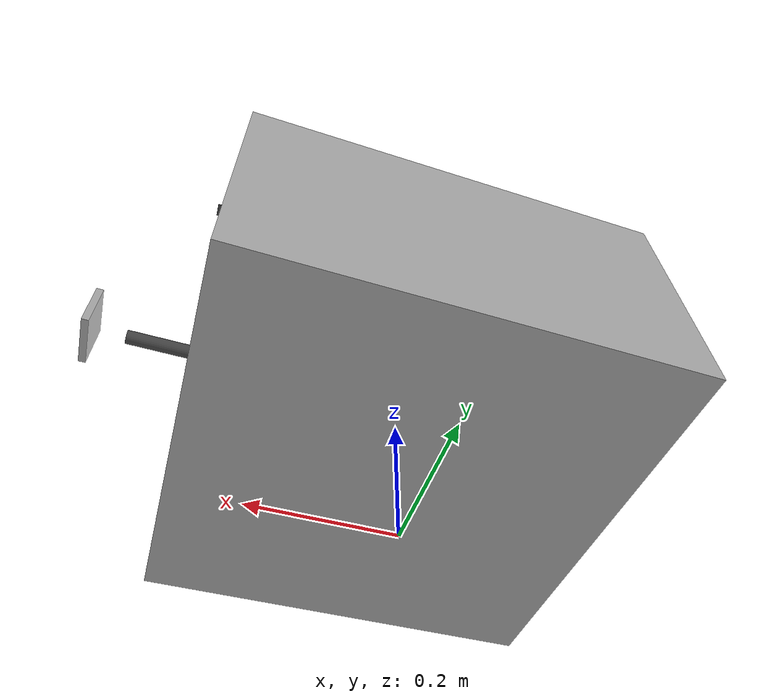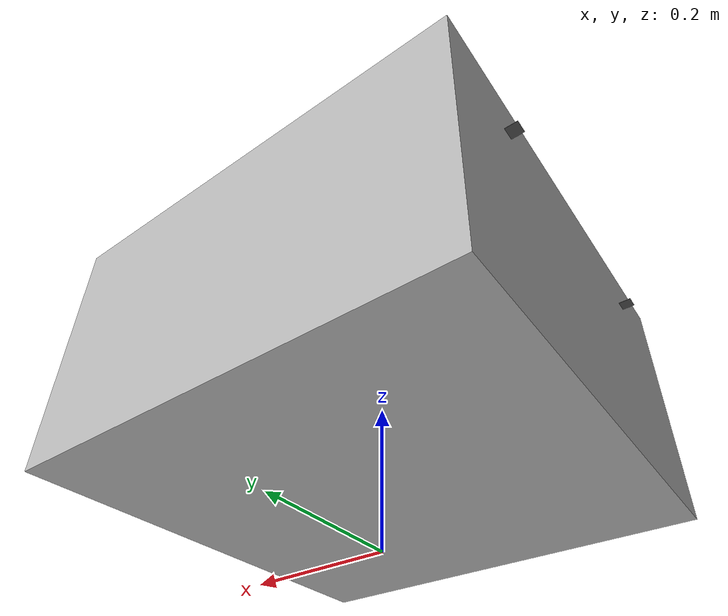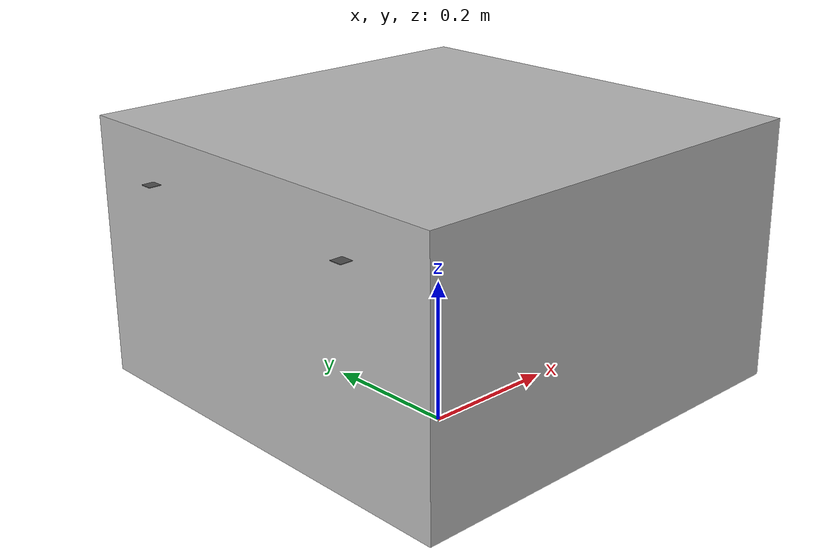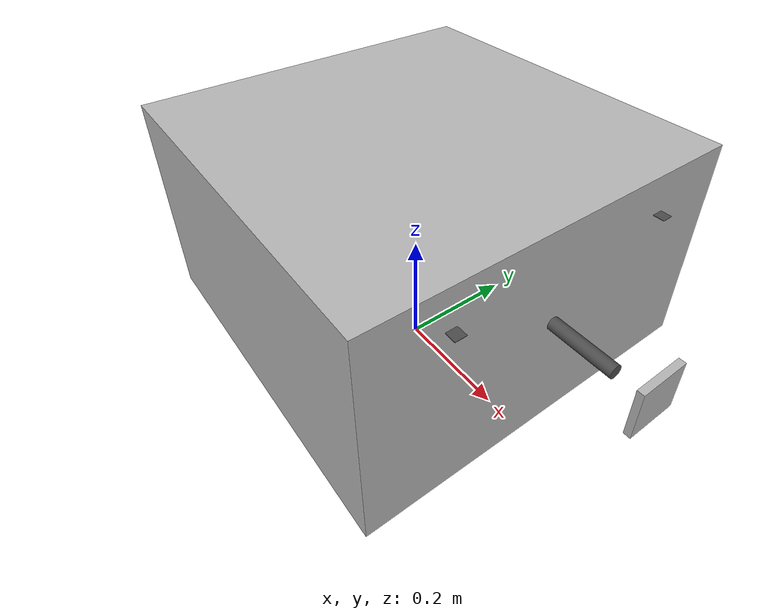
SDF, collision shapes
<?xml version="1.0" encoding="UTF-8"?>
<sdf version='1.9'>
  <model name='x500odometry'>
    <pose>0 0 .24 0 0 0</pose>
    <self_collide>false</self_collide>
    <static>false</static>
    <link name="base_link">
      <inertial>
        <mass>2.0</mass>
        <inertia>
          <ixx>0.02166666666666667</ixx>
          <ixy>0</ixy>
          <ixz>0</ixz>
          <iyy>0.02166666666666667</iyy>
          <iyz>0</iyz>
          <izz>0.04000000000000001</izz>
        </inertia>
      </inertial>
      <gravity>true</gravity>
      <velocity_decay/>
      <visual name="base_link_visual">
        <pose>-0.53 -0.415 -0.65 1.57079632679 0 1.57079632679</pose>
        <geometry>
          <mesh>
            <scale>1 1 1</scale>
            <uri>model://x500odometry/meshes/TactileMappingDroneRigidBody.dae</uri>
          </mesh>
        </geometry>
      </visual>
      <collision name="base_link_collision_0">
        <pose>0 0 .007 0 0 0</pose>
        <geometry>
          <box>
            <size>0.6 0.6 0.35</size>
          </box>
        </geometry>
        <surface>
          <contact>
            <ode>
              <min_depth>0.001</min_depth>
              <max_vel>0</max_vel>
            </ode>
          </contact>
          <friction>
            <ode/>
          </friction>
        </surface>
      </collision>
      <sensor name="air_pressure_sensor" type="air_pressure">
        <always_on>1</always_on>
        <update_rate>50</update_rate>
        <air_pressure>
          <pressure>
            <noise type="gaussian">
              <mean>0</mean>
              <stddev>0.01</stddev>
            </noise>
          </pressure>
        </air_pressure>
      </sensor>
      <sensor name="imu_sensor" type="imu">
        <always_on>1</always_on>
        <update_rate>250</update_rate>
      </sensor>
    </link>

    <link name="linear_shaft">
     <gravity>true</gravity>
      <self_collide>false</self_collide>
      <velocity_decay/>
      <pose>0.3 -0.005 0.025 0.0 1.57079632679 0.0</pose>
      <inertial>
          <mass>0.016076923076923075</mass>
          <inertia>
            <ixx>3.8464910483993325e-07</ixx>
            <iyy>2.6115851691700804e-05</iyy>
            <izz>2.649858234714004e-05</izz>
          </inertia>
        </inertial>
      <visual name="linear_shaft_visual">
        <pose>-0.0475 0.0625 0.04 1.57079632679 1.57079632679 0</pose>
        <geometry>
          <mesh>
            <scale>1 1 1</scale>
            <uri>model://x500odometry/meshes/LinearJoint.dae</uri>
          </mesh>
        </geometry>
        <material>
          <script>
            <name>Gazebo/DarkGrey</name>
            <uri>file://media/materials/scripts/gazebo.material</uri>
          </script>
        </material>
      </visual>
      <collision name="linear_shaft_collision">
        <pose>0 0 0 0 0 0 </pose>
        <geometry>
          <cylinder>
            <radius>0.01</radius>
            <length>0.2</length>
          </cylinder>
        </geometry>
      </collision>
    </link>
    <joint name="linear_joint" type="prismatic">
      <parent>base_link</parent>
      <child>linear_shaft</child>
      <axis>
        <xyz>0 1 0</xyz>
        <limit>
          <lower>-0.08</lower>
          <upper>0</upper>
        </limit>
        <dynamics>
          <spring_reference>0</spring_reference>
          <spring_stiffness>0.1</spring_stiffness>
        </dynamics>
      </axis>
    </joint>

    <link name="revolute_link">
     <gravity>true</gravity>
      <self_collide>false</self_collide>
      <velocity_decay/>
      <pose>0.45 0 0.025 1.57079632679 0 3.141592654 </pose>
      <inertial>
          <mass>0.016076923076923075</mass>
          <inertia>
            <ixx>3.8464910483993325e-07</ixx>
            <iyy>2.6115851691700804e-05</iyy>
            <izz>2.649858234714004e-05</izz>
          </inertia>
        </inertial>
      <visual name="revolute_link_visual">
        <pose>0.11 -0.042 -0.07 0 0 0</pose>
        <geometry>
          <mesh>
            <scale>1 1 1</scale>
            <uri>model://x500odometry/meshes/RevoluteJoint.dae</uri>
          </mesh>
        </geometry>
      </visual>
      <collision name="revolute_link_collision">
        <pose>0 0 0 0 0 0 </pose>
        <geometry>
          <box>
            <size>0.01 0.075 0.075</size>
          </box>
        </geometry>
      </collision>
    </link>
    <joint name="revolute_joint" type="revolute">
      <parent>linear_shaft</parent>
      <child>revolute_link</child>
      <axis>
        <xyz>0 1 0</xyz>
        <limit>
          <lower>-1.57</lower>
          <upper>1.57</upper>
        </limit>
        <dynamics>
          <spring_reference>0</spring_reference>
          <spring_stiffness>0</spring_stiffness>
        </dynamics>
      </axis>
    </joint>

    <link name="rotor_0">
      <gravity>true</gravity>
      <self_collide>false</self_collide>
      <velocity_decay/>
      <pose>0.177 -0.177 0.12 0 0 0</pose>
      <inertial>
          <mass>0.016076923076923075</mass>
          <inertia>
            <ixx>3.8464910483993325e-07</ixx>
            <iyy>2.6115851691700804e-05</iyy>
            <izz>2.649858234714004e-05</izz>
          </inertia>
        </inertial>
      <visual name="rotor_0_visual">
        <pose>-0.022 -0.14638461538461536 -0.016 0 0 0</pose>
        <geometry>
          <mesh>
            <scale>0.8461538461538461 0.8461538461538461 0.8461538461538461</scale>
            <uri>model://x500/meshes/1345_prop_ccw.stl</uri>
          </mesh>
        </geometry>
        <material>
          <script>
            <name>Gazebo/DarkGrey</name>
            <uri>file://media/materials/scripts/gazebo.material</uri>
          </script>
        </material>
      </visual>
      <collision name="rotor_0_collision">
        <pose>0 0 0 0 0 0 </pose>
        <geometry>
          <box>
            <size>0.2792307692307692 0.016923076923076923 0.0008461538461538462</size>
          </box>
        </geometry>
        <surface>
          <contact>
            <ode>
              <min_depth>0.001</min_depth>
              <max_vel>0</max_vel>
            </ode>
          </contact>
          <friction>
            <ode/>
          </friction>
        </surface>
      </collision>
    </link>
    <joint name="rotor_0_joint" type="revolute">
      <parent>base_link</parent>
      <child>rotor_0</child>
      <axis>
        <xyz>0 0 1</xyz>
        <limit>
          <lower>-1e+16</lower>
          <upper>1e+16</upper>
        </limit>
        <dynamics>
          <spring_reference>0</spring_reference>
          <spring_stiffness>0</spring_stiffness>
        </dynamics>
      </axis>
    </joint>
    <link name="rotor_1">
      <gravity>true</gravity>
      <self_collide>false</self_collide>
      <velocity_decay/>
      <pose>-0.177 0.177 0.12 0 0 0</pose>
      <inertial>
          <mass>0.016076923076923075</mass>
          <inertia>
            <ixx>3.8464910483993325e-07</ixx>
            <iyy>2.6115851691700804e-05</iyy>
            <izz>2.649858234714004e-05</izz>
          </inertia>
        </inertial>
      <visual name="rotor_1_visual">
        <pose>-0.022 -0.14638461538461536 -0.016 0 0 0</pose>
        <geometry>
          <mesh>
            <scale>0.8461538461538461 0.8461538461538461 0.8461538461538461</scale>
            <uri>model://x500/meshes/1345_prop_ccw.stl</uri>
          </mesh>
        </geometry>
        <material>
          <script>
            <name>Gazebo/DarkGrey</name>
            <uri>file://media/materials/scripts/gazebo.material</uri>
          </script>
        </material>
      </visual>
      <collision name="rotor_1_collision">
        <pose>0 0 0 0 0 0 </pose>
        <geometry>
          <box>
            <size>0.2792307692307692 0.016923076923076923 0.0008461538461538462</size>
          </box>
        </geometry>
        <surface>
          <contact>
            <ode>
              <min_depth>0.001</min_depth>
              <max_vel>0</max_vel>
            </ode>
          </contact>
          <friction>
            <ode/>
          </friction>
        </surface>
      </collision>
    </link>
    <joint name="rotor_1_joint" type="revolute">
      <parent>base_link</parent>
      <child>rotor_1</child>
      <axis>
        <xyz>0 0 1</xyz>
        <limit>
          <lower>-1e+16</lower>
          <upper>1e+16</upper>
        </limit>
        <dynamics>
          <spring_reference>0</spring_reference>
          <spring_stiffness>0</spring_stiffness>
        </dynamics>
      </axis>
    </joint>
    <link name="rotor_2">
      <gravity>true</gravity>
      <self_collide>false</self_collide>
      <velocity_decay/>
      <pose>0.177 0.177 0.12 0 0 0</pose>
      <inertial>
          <mass>0.016076923076923075</mass>
          <inertia>
            <ixx>3.8464910483993325e-07</ixx>
            <iyy>2.6115851691700804e-05</iyy>
            <izz>2.649858234714004e-05</izz>
          </inertia>
        </inertial>
      <visual name="rotor_2_visual">
        <pose>-0.022 -0.14638461538461536 -0.016 0 0 0</pose>
        <geometry>
          <mesh>
            <scale>0.8461538461538461 0.8461538461538461 0.8461538461538461</scale>
            <uri>model://x500/meshes/1345_prop_cw.stl</uri>
          </mesh>
        </geometry>
        <material>
          <script>
            <name>Gazebo/DarkGrey</name>
            <uri>file://media/materials/scripts/gazebo.material</uri>
          </script>
        </material>
      </visual>
      <collision name="rotor_2_collision">
        <pose>0 0 0 0 0 0 </pose>
        <geometry>
          <box>
            <size>0.2792307692307692 0.016923076923076923 0.0008461538461538462</size>
          </box>
        </geometry>
        <surface>
          <contact>
            <ode>
              <min_depth>0.001</min_depth>
              <max_vel>0</max_vel>
            </ode>
          </contact>
          <friction>
            <ode/>
          </friction>
        </surface>
      </collision>
    </link>
    <joint name="rotor_2_joint" type="revolute">
      <parent>base_link</parent>
      <child>rotor_2</child>
      <axis>
        <xyz>0 0 1</xyz>
        <limit>
          <lower>-1e+16</lower>
          <upper>1e+16</upper>
        </limit>
        <dynamics>
          <spring_reference>0</spring_reference>
          <spring_stiffness>0</spring_stiffness>
        </dynamics>
      </axis>
    </joint>
    <link name="rotor_3">
      <gravity>true</gravity>
      <self_collide>false</self_collide>
      <velocity_decay/>
      <pose>-0.177 -0.177 0.12 0 0 0</pose>
      <inertial>
          <mass>0.016076923076923075</mass>
          <inertia>
            <ixx>3.8464910483993325e-07</ixx>
            <iyy>2.6115851691700804e-05</iyy>
            <izz>2.649858234714004e-05</izz>
          </inertia>
        </inertial>
      <visual name="rotor_3_visual">
        <pose>-0.022 -0.14638461538461536 -0.016 0 0 0</pose>
        <geometry>
          <mesh>
            <scale>0.8461538461538461 0.8461538461538461 0.8461538461538461</scale>
            <uri>model://x500/meshes/1345_prop_cw.stl</uri>
          </mesh>
        </geometry>
        <material>
          <script>
            <name>Gazebo/DarkGrey</name>
            <uri>file://media/materials/scripts/gazebo.material</uri>
          </script>
        </material>
      </visual>
      <collision name="rotor_3_collision">
        <pose>0 0 0 0 0 0 </pose>
        <geometry>
          <box>
            <size>0.2792307692307692 0.016923076923076923 0.0008461538461538462</size>
          </box>
        </geometry>
        <surface>
          <contact>
            <ode>
              <min_depth>0.001</min_depth>
              <max_vel>0</max_vel>
            </ode>
          </contact>
          <friction>
            <ode/>
          </friction>
        </surface>
      </collision>
    </link>
    <joint name="rotor_3_joint" type="revolute">
      <parent>base_link</parent>
      <child>rotor_3</child>
      <axis>
        <xyz>0 0 1</xyz>
        <limit>
          <lower>-1e+16</lower>
          <upper>1e+16</upper>
        </limit>
        <dynamics>
          <spring_reference>0</spring_reference>
          <spring_stiffness>0</spring_stiffness>
        </dynamics>
      </axis>
    </joint>
   <plugin filename="gz-sim-multicopter-motor-model-system" name="gz::sim::systems::MulticopterMotorModel">
      <jointName>rotor_0_joint</jointName>
      <linkName>rotor_0</linkName>
      <turningDirection>ccw</turningDirection>
      <timeConstantUp>0.0125</timeConstantUp>
      <timeConstantDown>0.025</timeConstantDown>
      <maxRotVelocity>1000.0</maxRotVelocity>
      <motorConstant>8.54858e-06</motorConstant>
      <momentConstant>0.016</momentConstant>
      <commandSubTopic>command/motor_speed</commandSubTopic>
      <motorNumber>0</motorNumber>
      <rotorDragCoefficient>8.06428e-05</rotorDragCoefficient>
      <rollingMomentCoefficient>1e-06</rollingMomentCoefficient>
      <rotorVelocitySlowdownSim>10</rotorVelocitySlowdownSim>
      <motorType>velocity</motorType>
    </plugin>
    <plugin filename="gz-sim-multicopter-motor-model-system" name="gz::sim::systems::MulticopterMotorModel">
      <jointName>rotor_1_joint</jointName>
      <linkName>rotor_1</linkName>
      <turningDirection>ccw</turningDirection>
      <timeConstantUp>0.0125</timeConstantUp>
      <timeConstantDown>0.025</timeConstantDown>
      <maxRotVelocity>1000.0</maxRotVelocity>
      <motorConstant>8.54858e-06</motorConstant>
      <momentConstant>0.016</momentConstant>
      <commandSubTopic>command/motor_speed</commandSubTopic>
      <motorNumber>1</motorNumber>
      <rotorDragCoefficient>8.06428e-05</rotorDragCoefficient>
      <rollingMomentCoefficient>1e-06</rollingMomentCoefficient>
      <rotorVelocitySlowdownSim>10</rotorVelocitySlowdownSim>
      <motorType>velocity</motorType>
    </plugin>
    <plugin filename="gz-sim-multicopter-motor-model-system" name="gz::sim::systems::MulticopterMotorModel">
      <jointName>rotor_2_joint</jointName>
      <linkName>rotor_2</linkName>
      <turningDirection>cw</turningDirection>
      <timeConstantUp>0.0125</timeConstantUp>
      <timeConstantDown>0.025</timeConstantDown>
      <maxRotVelocity>1000.0</maxRotVelocity>
      <motorConstant>8.54858e-06</motorConstant>
      <momentConstant>0.016</momentConstant>
      <commandSubTopic>command/motor_speed</commandSubTopic>
      <motorNumber>2</motorNumber>
      <rotorDragCoefficient>8.06428e-05</rotorDragCoefficient>
      <rollingMomentCoefficient>1e-06</rollingMomentCoefficient>
      <rotorVelocitySlowdownSim>10</rotorVelocitySlowdownSim>
      <motorType>velocity</motorType>
    </plugin>
    <plugin filename="gz-sim-multicopter-motor-model-system" name="gz::sim::systems::MulticopterMotorModel">
      <jointName>rotor_3_joint</jointName>
      <linkName>rotor_3</linkName>
      <turningDirection>cw</turningDirection>
      <timeConstantUp>0.0125</timeConstantUp>
      <timeConstantDown>0.025</timeConstantDown>
      <maxRotVelocity>1000.0</maxRotVelocity>
      <motorConstant>8.54858e-06</motorConstant>
      <momentConstant>0.016</momentConstant>
      <commandSubTopic>command/motor_speed</commandSubTopic>
      <motorNumber>3</motorNumber>
      <rotorDragCoefficient>8.06428e-05</rotorDragCoefficient>
      <rollingMomentCoefficient>1e-06</rollingMomentCoefficient>
      <rotorVelocitySlowdownSim>10</rotorVelocitySlowdownSim>
      <motorType>velocity</motorType>
    </plugin>

    <plugin filename="MocapPub" name="gz::sim::systems::MocapPub">
    </plugin>
  </model>
</sdf>
